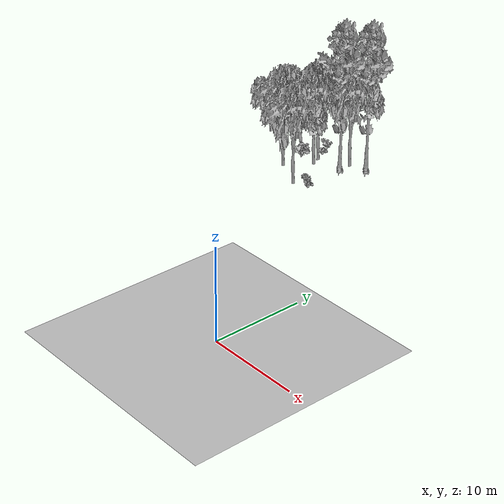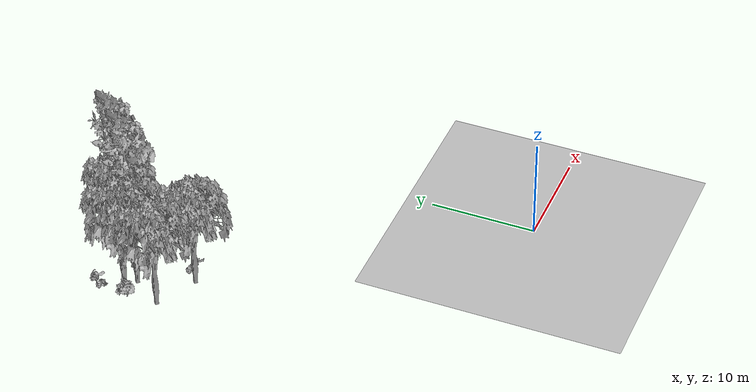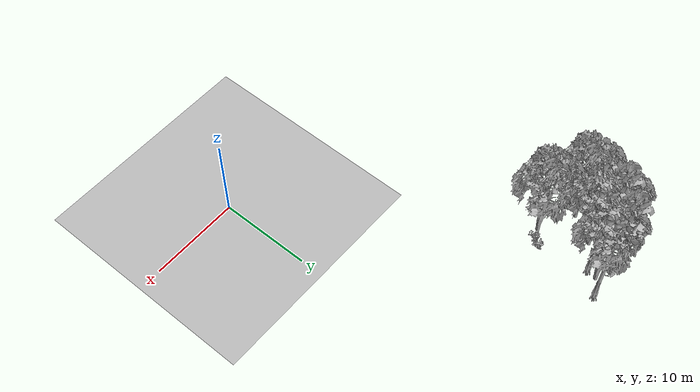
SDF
<sdf version="1.7">
 <world name="default">
  <model name="ground_plane">
   <static>1</static>
   <link name="link">
    <collision name="collision">
     <pose>-50 0 0 0 -0 0</pose>
     <geometry><plane><normal>0 0 1</normal><size>80 80</size></plane></geometry>
     <surface><contact><ode><min_depth>0.01</min_depth><max_vel>0</max_vel></ode></contact></surface>
    </collision>
    <visual name="grass">
     <cast_shadows>0</cast_shadows>
     <geometry>
      <mesh>
       <scale>0.46714285714285714 0.46714285714285714 0.1</scale>
       <uri>file://grass_plane/meshes/grass_plane.dae</uri>
      </mesh>
     </geometry>
    </visual>
   </link>
  </model>
  <model name="Tree 36">
   <static>1</static>
   <pose>-20.632927468682883 31.796684143006345 0 1.57079 -0 0</pose>
   <link name="link">
    <collision name="collision">
     <geometry><mesh><scale>3.5 5 3.5</scale><uri>model://tree_2/meshes/tree_2.obj</uri></mesh></geometry>
    </collision>
    <visual name="visual">
     <geometry><mesh><scale>3.5 5 3.5</scale><uri>model://tree_2/meshes/tree_2.obj</uri></mesh></geometry>
    </visual>
   </link>
  </model>
  <model name="Tree 259">
   <static>1</static>
   <pose>-17.17640794851881 33.41334409383481 0 1.57079 -0 0</pose>
   <link name="link">
    <collision name="collision">
     <geometry><mesh><scale>3.5 5 3.5</scale><uri>model://tree_2/meshes/tree_2.obj</uri></mesh></geometry>
    </collision>
    <visual name="visual">
     <geometry><mesh><scale>3.5 5 3.5</scale><uri>model://tree_2/meshes/tree_2.obj</uri></mesh></geometry>
    </visual>
   </link>
  </model>
  <model name="Tree 358">
   <static>1</static>
   <pose>-22.10826631037838 27.84845522601637 0 1.57079 -0 0</pose>
   <link name="link">
    <collision name="collision">
     <geometry><mesh><scale>3.5 5 3.5</scale><uri>model://tree_2/meshes/tree_2.obj</uri></mesh></geometry>
    </collision>
    <visual name="visual">
     <geometry><mesh><scale>3.5 5 3.5</scale><uri>model://tree_2/meshes/tree_2.obj</uri></mesh></geometry>
    </visual>
   </link>
  </model>
  <model name="Tree 367">
   <static>1</static>
   <pose>-17.51922112040399 32.328968075225944 0 1.57079 -0 0</pose>
   <link name="link">
    <collision name="collision">
     <geometry><mesh><scale>3.5 5 3.5</scale><uri>model://tree_9/meshes/tree_9.obj</uri></mesh></geometry>
    </collision>
    <visual name="visual">
     <geometry><mesh><scale>3.5 5 3.5</scale><uri>model://tree_9/meshes/tree_9.obj</uri></mesh></geometry>
    </visual>
   </link>
  </model>
  <model name="Tree 419">
   <static>1</static>
   <pose>-20.164803184835662 30.704110027799075 0 1.57079 -0 0</pose>
   <link name="link">
    <collision name="collision">
     <geometry><mesh><scale>3.5 5 3.5</scale><uri>model://tree_2/meshes/tree_2.obj</uri></mesh></geometry>
    </collision>
    <visual name="visual">
     <geometry><mesh><scale>3.5 5 3.5</scale><uri>model://tree_2/meshes/tree_2.obj</uri></mesh></geometry>
    </visual>
   </link>
  </model>
  <model name="Tree 596">
   <static>1</static>
   <pose>-15.448822104442435 34.39275334559474 0 1.57079 -0 0</pose>
   <link name="link">
    <collision name="collision">
     <geometry><mesh><scale>3.5 5 3.5</scale><uri>model://tree_9/meshes/tree_9.obj</uri></mesh></geometry>
    </collision>
    <visual name="visual">
     <geometry><mesh><scale>3.5 5 3.5</scale><uri>model://tree_9/meshes/tree_9.obj</uri></mesh></geometry>
    </visual>
   </link>
  </model>
  <model name="Tree 622">
   <static>1</static>
   <pose>-18.235666826741657 25.843552216351952 0 1.57079 -0 0</pose>
   <link name="link">
    <collision name="collision">
     <geometry><mesh><scale>3.5 5 3.5</scale><uri>model://tree_2/meshes/tree_2.obj</uri></mesh></geometry>
    </collision>
    <visual name="visual">
     <geometry><mesh><scale>3.5 5 3.5</scale><uri>model://tree_2/meshes/tree_2.obj</uri></mesh></geometry>
    </visual>
   </link>
  </model>
  <model name="Bush 205">
   <static>1</static>
   <pose>-21.539948108839717 34.12306907505621 0 1.57079 -0 0</pose>
   <link name="link">
    <collision name="collision">
     <geometry><mesh><scale>2 2 2</scale><uri>model://bush_0/meshes/bush_0.obj</uri></mesh></geometry>
     <surface><contact><collide_without_contact>false</collide_without_contact></contact></surface>
    </collision>
    <visual name="visual">
     <geometry><mesh><scale>2 2 2</scale><uri>model://bush_0/meshes/bush_0.obj</uri></mesh></geometry>
    </visual>
   </link>
  </model>
  <model name="Bush 264">
   <static>1</static>
   <pose>-16.608369272571583 26.530450465553443 0 1.57079 -0 0</pose>
   <link name="link">
    <collision name="collision">
     <geometry><mesh><scale>2 2 2</scale><uri>model://bush_5/meshes/bush_5.obj</uri></mesh></geometry>
     <surface><contact><collide_without_contact>false</collide_without_contact></contact></surface>
    </collision>
    <visual name="visual">
     <geometry><mesh><scale>2 2 2</scale><uri>model://bush_5/meshes/bush_5.obj</uri></mesh></geometry>
    </visual>
   </link>
  </model>
  <model name="Bush 465">
   <static>1</static>
   <pose>-22.164050455653786 30.718030130107252 0 1.57079 -0 0</pose>
   <link name="link">
    <collision name="collision">
     <geometry><mesh><scale>2 2 2</scale><uri>model://bush_1/meshes/bush_1.obj</uri></mesh></geometry>
     <surface><contact><collide_without_contact>false</collide_without_contact></contact></surface>
    </collision>
    <visual name="visual">
     <geometry><mesh><scale>2 2 2</scale><uri>model://bush_1/meshes/bush_1.obj</uri></mesh></geometry>
    </visual>
   </link>
  </model>
  <model name="Bush 485">
   <static>1</static>
   <pose>-21.626482239906302 33.570658788303234 0 1.57079 -0 0</pose>
   <link name="link">
    <collision name="collision">
     <geometry><mesh><scale>2 2 2</scale><uri>model://bush_2/meshes/bush_2.obj</uri></mesh></geometry>
     <surface><contact><collide_without_contact>false</collide_without_contact></contact></surface>
    </collision>
    <visual name="visual">
     <geometry><mesh><scale>2 2 2</scale><uri>model://bush_2/meshes/bush_2.obj</uri></mesh></geometry>
    </visual>
   </link>
  </model>
  <model name="Bush 562">
   <static>1</static>
   <pose>-16.809901031335567 26.908471608849553 0 1.57079 -0 0</pose>
   <link name="link">
    <collision name="collision">
     <geometry><mesh><scale>2 2 2</scale><uri>model://bush_2/meshes/bush_2.obj</uri></mesh></geometry>
     <surface><contact><collide_without_contact>false</collide_without_contact></contact></surface>
    </collision>
    <visual name="visual">
     <geometry><mesh><scale>2 2 2</scale><uri>model://bush_2/meshes/bush_2.obj</uri></mesh></geometry>
    </visual>
   </link>
  </model>
 </world>
</sdf>
